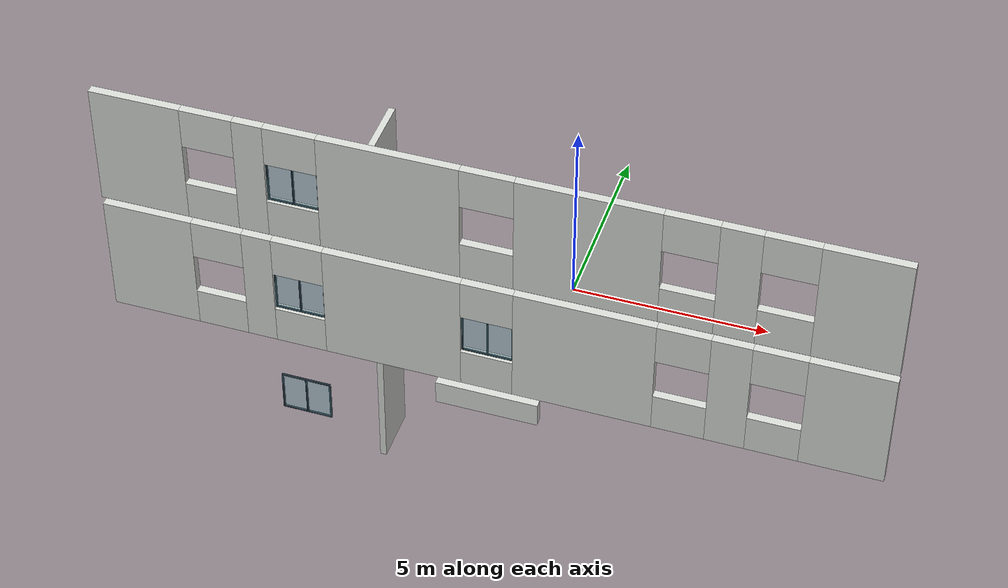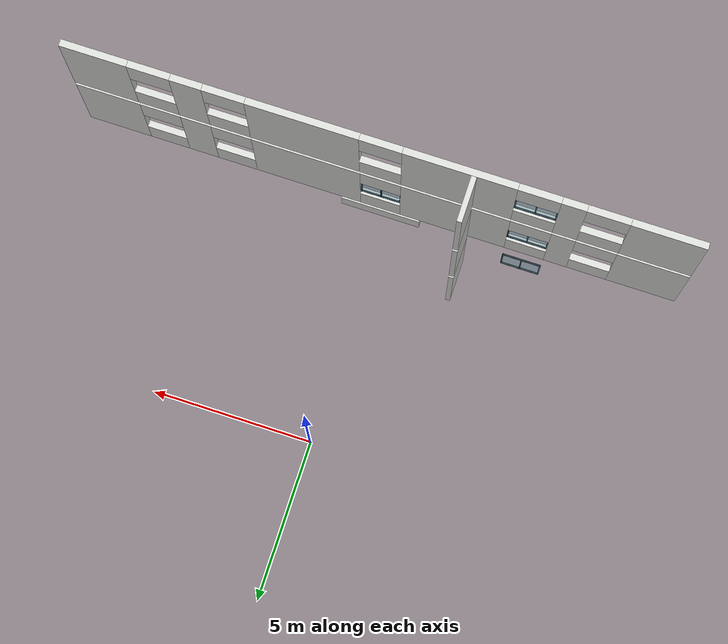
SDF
<sdf version="1.6">
 <world name="three_floor">
  <model name="f1_wall_014">
   <static>true</static>
   <pose>-2.6 -6.15 1.5 0 0 0</pose>
   <link name="f1_wall_014_link">
    <collision name="f1_wall_014_collision"><geometry><box><size>0.15 1.3 3</size></box></geometry></collision>
    <visual name="f1_wall_014_visual">
     <geometry><box><size>0.15 1.3 3</size></box></geometry>
     <material><ambient>.84 .85 .83 1</ambient><diffuse>.84 .85 .83 1</diffuse></material>
    </visual>
   </link>
  </model>
  <model name="f1_lintel_main_entry">
   <static>true</static>
   <pose>0 -6.9 2.7 0 0 0</pose>
   <link name="f1_lintel_main_entry_link">
    <collision name="f1_lintel_main_entry_collision">
     <geometry><box><size>2.4 0.2 0.6</size></box></geometry>
    </collision>
    <visual name="f1_lintel_main_entry_visual">
     <geometry><box><size>2.4 0.2 0.6</size></box></geometry>
     <material><ambient>.84 .85 .83 1</ambient><diffuse>.84 .85 .83 1</diffuse></material>
    </visual>
   </link>
  </model>
  <model name="f2_wall_009">
   <static>true</static>
   <pose>0 -6.9 4.7 0 0 0</pose>
   <link name="f2_wall_009_link">
    <collision name="f2_wall_009_link_panel_0_collision">
     <pose>-7.95 0 0 0 0 0</pose>
     <geometry><box><size>2.1 0.2 3</size></box></geometry>
    </collision>
    <visual name="f2_wall_009_link_panel_0_visual">
     <pose>-7.95 0 0 0 0 0</pose>
     <geometry><box><size>2.1 0.2 3</size></box></geometry>
     <material><ambient>.84 .85 .83 1</ambient><diffuse>.84 .85 .83 1</diffuse></material>
    </visual>
    <collision name="f2_wall_009_link_sill_0_collision">
     <pose>-6.3 0 -1.025 0 0 0</pose>
     <geometry><box><size>1.2 0.2 0.95</size></box></geometry>
    </collision>
    <visual name="f2_wall_009_link_sill_0_visual">
     <pose>-6.3 0 -1.025 0 0 0</pose>
     <geometry><box><size>1.2 0.2 0.95</size></box></geometry>
     <material><ambient>.84 .85 .83 1</ambient><diffuse>.84 .85 .83 1</diffuse></material>
    </visual>
    <collision name="f2_wall_009_link_header_0_collision">
     <pose>-6.3 0 1 0 0 0</pose>
     <geometry><box><size>1.2 0.2 1</size></box></geometry>
    </collision>
    <visual name="f2_wall_009_link_header_0_visual">
     <pose>-6.3 0 1 0 0 0</pose>
     <geometry><box><size>1.2 0.2 1</size></box></geometry>
     <material><ambient>.84 .85 .83 1</ambient><diffuse>.84 .85 .83 1</diffuse></material>
    </visual>
    <collision name="f2_wall_009_link_panel_1_collision">
     <pose>-5.35 0 0 0 0 0</pose>
     <geometry><box><size>0.7 0.2 3</size></box></geometry>
    </collision>
    <visual name="f2_wall_009_link_panel_1_visual">
     <pose>-5.35 0 0 0 0 0</pose>
     <geometry><box><size>0.7 0.2 3</size></box></geometry>
     <material><ambient>.84 .85 .83 1</ambient><diffuse>.84 .85 .83 1</diffuse></material>
    </visual>
    <collision name="f2_wall_009_link_sill_1_collision">
     <pose>-4.4 0 -1.025 0 0 0</pose>
     <geometry><box><size>1.2 0.2 0.95</size></box></geometry>
    </collision>
    <visual name="f2_wall_009_link_sill_1_visual">
     <pose>-4.4 0 -1.025 0 0 0</pose>
     <geometry><box><size>1.2 0.2 0.95</size></box></geometry>
     <material><ambient>.84 .85 .83 1</ambient><diffuse>.84 .85 .83 1</diffuse></material>
    </visual>
    <collision name="f2_wall_009_link_header_1_collision">
     <pose>-4.4 0 1 0 0 0</pose>
     <geometry><box><size>1.2 0.2 1</size></box></geometry>
    </collision>
    <visual name="f2_wall_009_link_header_1_visual">
     <pose>-4.4 0 1 0 0 0</pose>
     <geometry><box><size>1.2 0.2 1</size></box></geometry>
     <material><ambient>.84 .85 .83 1</ambient><diffuse>.84 .85 .83 1</diffuse></material>
    </visual>
    <collision name="f2_wall_009_link_panel_2_collision">
     <pose>-2.2 0 0 0 0 0</pose>
     <geometry><box><size>3.2 0.2 3</size></box></geometry>
    </collision>
    <visual name="f2_wall_009_link_panel_2_visual">
     <pose>-2.2 0 0 0 0 0</pose>
     <geometry><box><size>3.2 0.2 3</size></box></geometry>
     <material><ambient>.84 .85 .83 1</ambient><diffuse>.84 .85 .83 1</diffuse></material>
    </visual>
    <collision name="f2_wall_009_link_sill_2_collision">
     <pose>0 0 -1.025 0 0 0</pose>
     <geometry><box><size>1.2 0.2 0.95</size></box></geometry>
    </collision>
    <visual name="f2_wall_009_link_sill_2_visual">
     <pose>0 0 -1.025 0 0 0</pose>
     <geometry><box><size>1.2 0.2 0.95</size></box></geometry>
     <material><ambient>.84 .85 .83 1</ambient><diffuse>.84 .85 .83 1</diffuse></material>
    </visual>
    <collision name="f2_wall_009_link_header_2_collision">
     <pose>0 0 1 0 0 0</pose>
     <geometry><box><size>1.2 0.2 1</size></box></geometry>
    </collision>
    <visual name="f2_wall_009_link_header_2_visual">
     <pose>0 0 1 0 0 0</pose>
     <geometry><box><size>1.2 0.2 1</size></box></geometry>
     <material><ambient>.84 .85 .83 1</ambient><diffuse>.84 .85 .83 1</diffuse></material>
    </visual>
    <collision name="f2_wall_009_link_panel_3_collision">
     <pose>2.2 0 0 0 0 0</pose>
     <geometry><box><size>3.2 0.2 3</size></box></geometry>
    </collision>
    <visual name="f2_wall_009_link_panel_3_visual">
     <pose>2.2 0 0 0 0 0</pose>
     <geometry><box><size>3.2 0.2 3</size></box></geometry>
     <material><ambient>.84 .85 .83 1</ambient><diffuse>.84 .85 .83 1</diffuse></material>
    </visual>
    <collision name="f2_wall_009_link_sill_3_collision">
     <pose>4.4 0 -1.025 0 0 0</pose>
     <geometry><box><size>1.2 0.2 0.95</size></box></geometry>
    </collision>
    <visual name="f2_wall_009_link_sill_3_visual">
     <pose>4.4 0 -1.025 0 0 0</pose>
     <geometry><box><size>1.2 0.2 0.95</size></box></geometry>
     <material><ambient>.84 .85 .83 1</ambient><diffuse>.84 .85 .83 1</diffuse></material>
    </visual>
    <collision name="f2_wall_009_link_header_3_collision">
     <pose>4.4 0 1 0 0 0</pose>
     <geometry><box><size>1.2 0.2 1</size></box></geometry>
    </collision>
    <visual name="f2_wall_009_link_header_3_visual">
     <pose>4.4 0 1 0 0 0</pose>
     <geometry><box><size>1.2 0.2 1</size></box></geometry>
     <material><ambient>.84 .85 .83 1</ambient><diffuse>.84 .85 .83 1</diffuse></material>
    </visual>
    <collision name="f2_wall_009_link_panel_4_collision">
     <pose>5.45 0 0 0 0 0</pose>
     <geometry><box><size>0.9 0.2 3</size></box></geometry>
    </collision>
    <visual name="f2_wall_009_link_panel_4_visual">
     <pose>5.45 0 0 0 0 0</pose>
     <geometry><box><size>0.9 0.2 3</size></box></geometry>
     <material><ambient>.84 .85 .83 1</ambient><diffuse>.84 .85 .83 1</diffuse></material>
    </visual>
    <collision name="f2_wall_009_link_sill_4_collision">
     <pose>6.5 0 -1.025 0 0 0</pose>
     <geometry><box><size>1.2 0.2 0.95</size></box></geometry>
    </collision>
    <visual name="f2_wall_009_link_sill_4_visual">
     <pose>6.5 0 -1.025 0 0 0</pose>
     <geometry><box><size>1.2 0.2 0.95</size></box></geometry>
     <material><ambient>.84 .85 .83 1</ambient><diffuse>.84 .85 .83 1</diffuse></material>
    </visual>
    <collision name="f2_wall_009_link_header_4_collision">
     <pose>6.5 0 1 0 0 0</pose>
     <geometry><box><size>1.2 0.2 1</size></box></geometry>
    </collision>
    <visual name="f2_wall_009_link_header_4_visual">
     <pose>6.5 0 1 0 0 0</pose>
     <geometry><box><size>1.2 0.2 1</size></box></geometry>
     <material><ambient>.84 .85 .83 1</ambient><diffuse>.84 .85 .83 1</diffuse></material>
    </visual>
    <collision name="f2_wall_009_link_last_panel_collision">
     <pose>8.05 0 0 0 0 0</pose>
     <geometry><box><size>1.9 0.2 3</size></box></geometry>
    </collision>
    <visual name="f2_wall_009_link_last_panel_visual">
     <pose>8.05 0 0 0 0 0</pose>
     <geometry><box><size>1.9 0.2 3</size></box></geometry>
     <material><ambient>.84 .85 .83 1</ambient><diffuse>.84 .85 .83 1</diffuse></material>
    </visual>
   </link>
  </model>
  <model name="f2_wall_014">
   <static>true</static>
   <pose>-2.6 -6.15 4.7 0 0 0</pose>
   <link name="f2_wall_014_link">
    <collision name="f2_wall_014_collision"><geometry><box><size>0.15 1.3 3</size></box></geometry></collision>
    <visual name="f2_wall_014_visual">
     <geometry><box><size>0.15 1.3 3</size></box></geometry>
     <material><ambient>.84 .85 .83 1</ambient><diffuse>.84 .85 .83 1</diffuse></material>
    </visual>
   </link>
  </model>
  <model name="f3_wall_013">
   <static>true</static>
   <pose>0 -6.9 7.9 0 0 0</pose>
   <link name="f3_wall_013_link">
    <collision name="f3_wall_013_link_panel_0_collision">
     <pose>-7.95 0 0 0 0 0</pose>
     <geometry><box><size>2.1 0.2 3</size></box></geometry>
    </collision>
    <visual name="f3_wall_013_link_panel_0_visual">
     <pose>-7.95 0 0 0 0 0</pose>
     <geometry><box><size>2.1 0.2 3</size></box></geometry>
     <material><ambient>.84 .85 .83 1</ambient><diffuse>.84 .85 .83 1</diffuse></material>
    </visual>
    <collision name="f3_wall_013_link_sill_0_collision">
     <pose>-6.3 0 -1.025 0 0 0</pose>
     <geometry><box><size>1.2 0.2 0.95</size></box></geometry>
    </collision>
    <visual name="f3_wall_013_link_sill_0_visual">
     <pose>-6.3 0 -1.025 0 0 0</pose>
     <geometry><box><size>1.2 0.2 0.95</size></box></geometry>
     <material><ambient>.84 .85 .83 1</ambient><diffuse>.84 .85 .83 1</diffuse></material>
    </visual>
    <collision name="f3_wall_013_link_header_0_collision">
     <pose>-6.3 0 1 0 0 0</pose>
     <geometry><box><size>1.2 0.2 1</size></box></geometry>
    </collision>
    <visual name="f3_wall_013_link_header_0_visual">
     <pose>-6.3 0 1 0 0 0</pose>
     <geometry><box><size>1.2 0.2 1</size></box></geometry>
     <material><ambient>.84 .85 .83 1</ambient><diffuse>.84 .85 .83 1</diffuse></material>
    </visual>
    <collision name="f3_wall_013_link_panel_1_collision">
     <pose>-5.35 0 0 0 0 0</pose>
     <geometry><box><size>0.7 0.2 3</size></box></geometry>
    </collision>
    <visual name="f3_wall_013_link_panel_1_visual">
     <pose>-5.35 0 0 0 0 0</pose>
     <geometry><box><size>0.7 0.2 3</size></box></geometry>
     <material><ambient>.84 .85 .83 1</ambient><diffuse>.84 .85 .83 1</diffuse></material>
    </visual>
    <collision name="f3_wall_013_link_sill_1_collision">
     <pose>-4.4 0 -1.025 0 0 0</pose>
     <geometry><box><size>1.2 0.2 0.95</size></box></geometry>
    </collision>
    <visual name="f3_wall_013_link_sill_1_visual">
     <pose>-4.4 0 -1.025 0 0 0</pose>
     <geometry><box><size>1.2 0.2 0.95</size></box></geometry>
     <material><ambient>.84 .85 .83 1</ambient><diffuse>.84 .85 .83 1</diffuse></material>
    </visual>
    <collision name="f3_wall_013_link_header_1_collision">
     <pose>-4.4 0 1 0 0 0</pose>
     <geometry><box><size>1.2 0.2 1</size></box></geometry>
    </collision>
    <visual name="f3_wall_013_link_header_1_visual">
     <pose>-4.4 0 1 0 0 0</pose>
     <geometry><box><size>1.2 0.2 1</size></box></geometry>
     <material><ambient>.84 .85 .83 1</ambient><diffuse>.84 .85 .83 1</diffuse></material>
    </visual>
    <collision name="f3_wall_013_link_panel_2_collision">
     <pose>-2.2 0 0 0 0 0</pose>
     <geometry><box><size>3.2 0.2 3</size></box></geometry>
    </collision>
    <visual name="f3_wall_013_link_panel_2_visual">
     <pose>-2.2 0 0 0 0 0</pose>
     <geometry><box><size>3.2 0.2 3</size></box></geometry>
     <material><ambient>.84 .85 .83 1</ambient><diffuse>.84 .85 .83 1</diffuse></material>
    </visual>
    <collision name="f3_wall_013_link_sill_2_collision">
     <pose>0 0 -1.025 0 0 0</pose>
     <geometry><box><size>1.2 0.2 0.95</size></box></geometry>
    </collision>
    <visual name="f3_wall_013_link_sill_2_visual">
     <pose>0 0 -1.025 0 0 0</pose>
     <geometry><box><size>1.2 0.2 0.95</size></box></geometry>
     <material><ambient>.84 .85 .83 1</ambient><diffuse>.84 .85 .83 1</diffuse></material>
    </visual>
    <collision name="f3_wall_013_link_header_2_collision">
     <pose>0 0 1 0 0 0</pose>
     <geometry><box><size>1.2 0.2 1</size></box></geometry>
    </collision>
    <visual name="f3_wall_013_link_header_2_visual">
     <pose>0 0 1 0 0 0</pose>
     <geometry><box><size>1.2 0.2 1</size></box></geometry>
     <material><ambient>.84 .85 .83 1</ambient><diffuse>.84 .85 .83 1</diffuse></material>
    </visual>
    <collision name="f3_wall_013_link_panel_3_collision">
     <pose>2.2 0 0 0 0 0</pose>
     <geometry><box><size>3.2 0.2 3</size></box></geometry>
    </collision>
    <visual name="f3_wall_013_link_panel_3_visual">
     <pose>2.2 0 0 0 0 0</pose>
     <geometry><box><size>3.2 0.2 3</size></box></geometry>
     <material><ambient>.84 .85 .83 1</ambient><diffuse>.84 .85 .83 1</diffuse></material>
    </visual>
    <collision name="f3_wall_013_link_sill_3_collision">
     <pose>4.4 0 -1.025 0 0 0</pose>
     <geometry><box><size>1.2 0.2 0.95</size></box></geometry>
    </collision>
    <visual name="f3_wall_013_link_sill_3_visual">
     <pose>4.4 0 -1.025 0 0 0</pose>
     <geometry><box><size>1.2 0.2 0.95</size></box></geometry>
     <material><ambient>.84 .85 .83 1</ambient><diffuse>.84 .85 .83 1</diffuse></material>
    </visual>
    <collision name="f3_wall_013_link_header_3_collision">
     <pose>4.4 0 1 0 0 0</pose>
     <geometry><box><size>1.2 0.2 1</size></box></geometry>
    </collision>
    <visual name="f3_wall_013_link_header_3_visual">
     <pose>4.4 0 1 0 0 0</pose>
     <geometry><box><size>1.2 0.2 1</size></box></geometry>
     <material><ambient>.84 .85 .83 1</ambient><diffuse>.84 .85 .83 1</diffuse></material>
    </visual>
    <collision name="f3_wall_013_link_panel_4_collision">
     <pose>5.45 0 0 0 0 0</pose>
     <geometry><box><size>0.9 0.2 3</size></box></geometry>
    </collision>
    <visual name="f3_wall_013_link_panel_4_visual">
     <pose>5.45 0 0 0 0 0</pose>
     <geometry><box><size>0.9 0.2 3</size></box></geometry>
     <material><ambient>.84 .85 .83 1</ambient><diffuse>.84 .85 .83 1</diffuse></material>
    </visual>
    <collision name="f3_wall_013_link_sill_4_collision">
     <pose>6.5 0 -1.025 0 0 0</pose>
     <geometry><box><size>1.2 0.2 0.95</size></box></geometry>
    </collision>
    <visual name="f3_wall_013_link_sill_4_visual">
     <pose>6.5 0 -1.025 0 0 0</pose>
     <geometry><box><size>1.2 0.2 0.95</size></box></geometry>
     <material><ambient>.84 .85 .83 1</ambient><diffuse>.84 .85 .83 1</diffuse></material>
    </visual>
    <collision name="f3_wall_013_link_header_4_collision">
     <pose>6.5 0 1 0 0 0</pose>
     <geometry><box><size>1.2 0.2 1</size></box></geometry>
    </collision>
    <visual name="f3_wall_013_link_header_4_visual">
     <pose>6.5 0 1 0 0 0</pose>
     <geometry><box><size>1.2 0.2 1</size></box></geometry>
     <material><ambient>.84 .85 .83 1</ambient><diffuse>.84 .85 .83 1</diffuse></material>
    </visual>
    <collision name="f3_wall_013_link_last_panel_collision">
     <pose>8.05 0 0 0 0 0</pose>
     <geometry><box><size>1.9 0.2 3</size></box></geometry>
    </collision>
    <visual name="f3_wall_013_link_last_panel_visual">
     <pose>8.05 0 0 0 0 0</pose>
     <geometry><box><size>1.9 0.2 3</size></box></geometry>
     <material><ambient>.84 .85 .83 1</ambient><diffuse>.84 .85 .83 1</diffuse></material>
    </visual>
   </link>
  </model>
  <model name="f3_wall_014">
   <static>true</static>
   <pose>-2.6 -6.15 7.9 0 0 0</pose>
   <link name="f3_wall_014_link">
    <collision name="f3_wall_014_collision"><geometry><box><size>0.15 1.3 3</size></box></geometry></collision>
    <visual name="f3_wall_014_visual">
     <geometry><box><size>0.15 1.3 3</size></box></geometry>
     <material><ambient>.84 .85 .83 1</ambient><diffuse>.84 .85 .83 1</diffuse></material>
    </visual>
   </link>
  </model>
  <model name="f1_s2_window_09">
   <static>true</static>
   <pose>-4.4 -6.9 1.475 0 0 0</pose>
   <link name="f1_s2_window_09_link">
    <collision name="f1_s2_window_09_link_glass_collision">
     <geometry><box><size>1.2 0.045 1.05</size></box></geometry>
    </collision>
    <visual name="f1_s2_window_09_link_glass_visual">
     <geometry><box><size>1.2 0.045 1.05</size></box></geometry>
     <material><ambient>0.44 0.76 0.83 1</ambient><diffuse>0.44 0.76 0.83 1</diffuse></material>
     <transparency>0.65</transparency>
    </visual>
    <collision name="f1_s2_window_09_link_mullion_-0.58_collision">
     <pose>-0.58 0 0 0 0 0</pose>
     <geometry><box><size>0.035 0.045 1.05</size></box></geometry>
    </collision>
    <visual name="f1_s2_window_09_link_mullion_-0.58_visual">
     <pose>-0.58 0 0 0 0 0</pose>
     <geometry><box><size>0.035 0.045 1.05</size></box></geometry>
     <material><ambient>0.15 0.2 0.24 1</ambient><diffuse>0.15 0.2 0.24 1</diffuse></material>
    </visual>
    <collision name="f1_s2_window_09_link_mullion_0.58_collision">
     <pose>0.58 0 0 0 0 0</pose>
     <geometry><box><size>0.035 0.045 1.05</size></box></geometry>
    </collision>
    <visual name="f1_s2_window_09_link_mullion_0.58_visual">
     <pose>0.58 0 0 0 0 0</pose>
     <geometry><box><size>0.035 0.045 1.05</size></box></geometry>
     <material><ambient>0.15 0.2 0.24 1</ambient><diffuse>0.15 0.2 0.24 1</diffuse></material>
    </visual>
    <collision name="f1_s2_window_09_link_mullion_0_collision">
     <geometry><box><size>0.035 0.045 1.05</size></box></geometry>
    </collision>
    <visual name="f1_s2_window_09_link_mullion_0_visual">
     <geometry><box><size>0.035 0.045 1.05</size></box></geometry>
     <material><ambient>0.15 0.2 0.24 1</ambient><diffuse>0.15 0.2 0.24 1</diffuse></material>
    </visual>
    <collision name="f1_s2_window_09_link_frame_-0.51_collision">
     <pose>0 0 -0.51 0 0 0</pose>
     <geometry><box><size>1.2 0.045 0.03</size></box></geometry>
    </collision>
    <visual name="f1_s2_window_09_link_frame_-0.51_visual">
     <pose>0 0 -0.51 0 0 0</pose>
     <geometry><box><size>1.2 0.045 0.03</size></box></geometry>
     <material><ambient>0.15 0.2 0.24 1</ambient><diffuse>0.15 0.2 0.24 1</diffuse></material>
    </visual>
    <collision name="f1_s2_window_09_link_frame_0.51_collision">
     <pose>0 0 0.51 0 0 0</pose>
     <geometry><box><size>1.2 0.045 0.03</size></box></geometry>
    </collision>
    <visual name="f1_s2_window_09_link_frame_0.51_visual">
     <pose>0 0 0.51 0 0 0</pose>
     <geometry><box><size>1.2 0.045 0.03</size></box></geometry>
     <material><ambient>0.15 0.2 0.24 1</ambient><diffuse>0.15 0.2 0.24 1</diffuse></material>
    </visual>
   </link>
  </model>
  <model name="f2_s2_window_20">
   <static>true</static>
   <pose>-4.4 -6.9 4.675 0 0 0</pose>
   <link name="f2_s2_window_20_link">
    <collision name="f2_s2_window_20_link_glass_collision">
     <geometry><box><size>1.2 0.045 1.05</size></box></geometry>
    </collision>
    <visual name="f2_s2_window_20_link_glass_visual">
     <geometry><box><size>1.2 0.045 1.05</size></box></geometry>
     <material><ambient>0.44 0.76 0.83 1</ambient><diffuse>0.44 0.76 0.83 1</diffuse></material>
     <transparency>0.65</transparency>
    </visual>
    <collision name="f2_s2_window_20_link_mullion_-0.58_collision">
     <pose>-0.58 0 0 0 0 0</pose>
     <geometry><box><size>0.035 0.045 1.05</size></box></geometry>
    </collision>
    <visual name="f2_s2_window_20_link_mullion_-0.58_visual">
     <pose>-0.58 0 0 0 0 0</pose>
     <geometry><box><size>0.035 0.045 1.05</size></box></geometry>
     <material><ambient>0.15 0.2 0.24 1</ambient><diffuse>0.15 0.2 0.24 1</diffuse></material>
    </visual>
    <collision name="f2_s2_window_20_link_mullion_0.58_collision">
     <pose>0.58 0 0 0 0 0</pose>
     <geometry><box><size>0.035 0.045 1.05</size></box></geometry>
    </collision>
    <visual name="f2_s2_window_20_link_mullion_0.58_visual">
     <pose>0.58 0 0 0 0 0</pose>
     <geometry><box><size>0.035 0.045 1.05</size></box></geometry>
     <material><ambient>0.15 0.2 0.24 1</ambient><diffuse>0.15 0.2 0.24 1</diffuse></material>
    </visual>
    <collision name="f2_s2_window_20_link_mullion_0_collision">
     <geometry><box><size>0.035 0.045 1.05</size></box></geometry>
    </collision>
    <visual name="f2_s2_window_20_link_mullion_0_visual">
     <geometry><box><size>0.035 0.045 1.05</size></box></geometry>
     <material><ambient>0.15 0.2 0.24 1</ambient><diffuse>0.15 0.2 0.24 1</diffuse></material>
    </visual>
    <collision name="f2_s2_window_20_link_frame_-0.51_collision">
     <pose>0 0 -0.51 0 0 0</pose>
     <geometry><box><size>1.2 0.045 0.03</size></box></geometry>
    </collision>
    <visual name="f2_s2_window_20_link_frame_-0.51_visual">
     <pose>0 0 -0.51 0 0 0</pose>
     <geometry><box><size>1.2 0.045 0.03</size></box></geometry>
     <material><ambient>0.15 0.2 0.24 1</ambient><diffuse>0.15 0.2 0.24 1</diffuse></material>
    </visual>
    <collision name="f2_s2_window_20_link_frame_0.51_collision">
     <pose>0 0 0.51 0 0 0</pose>
     <geometry><box><size>1.2 0.045 0.03</size></box></geometry>
    </collision>
    <visual name="f2_s2_window_20_link_frame_0.51_visual">
     <pose>0 0 0.51 0 0 0</pose>
     <geometry><box><size>1.2 0.045 0.03</size></box></geometry>
     <material><ambient>0.15 0.2 0.24 1</ambient><diffuse>0.15 0.2 0.24 1</diffuse></material>
    </visual>
   </link>
  </model>
  <model name="f2_s2_window_21">
   <static>true</static>
   <pose>0 -6.9 4.675 0 0 0</pose>
   <link name="f2_s2_window_21_link">
    <collision name="f2_s2_window_21_link_glass_collision">
     <geometry><box><size>1.2 0.045 1.05</size></box></geometry>
    </collision>
    <visual name="f2_s2_window_21_link_glass_visual">
     <geometry><box><size>1.2 0.045 1.05</size></box></geometry>
     <material><ambient>0.44 0.76 0.83 1</ambient><diffuse>0.44 0.76 0.83 1</diffuse></material>
     <transparency>0.65</transparency>
    </visual>
    <collision name="f2_s2_window_21_link_mullion_-0.58_collision">
     <pose>-0.58 0 0 0 0 0</pose>
     <geometry><box><size>0.035 0.045 1.05</size></box></geometry>
    </collision>
    <visual name="f2_s2_window_21_link_mullion_-0.58_visual">
     <pose>-0.58 0 0 0 0 0</pose>
     <geometry><box><size>0.035 0.045 1.05</size></box></geometry>
     <material><ambient>0.15 0.2 0.24 1</ambient><diffuse>0.15 0.2 0.24 1</diffuse></material>
    </visual>
    <collision name="f2_s2_window_21_link_mullion_0.58_collision">
     <pose>0.58 0 0 0 0 0</pose>
     <geometry><box><size>0.035 0.045 1.05</size></box></geometry>
    </collision>
    <visual name="f2_s2_window_21_link_mullion_0.58_visual">
     <pose>0.58 0 0 0 0 0</pose>
     <geometry><box><size>0.035 0.045 1.05</size></box></geometry>
     <material><ambient>0.15 0.2 0.24 1</ambient><diffuse>0.15 0.2 0.24 1</diffuse></material>
    </visual>
    <collision name="f2_s2_window_21_link_mullion_0_collision">
     <geometry><box><size>0.035 0.045 1.05</size></box></geometry>
    </collision>
    <visual name="f2_s2_window_21_link_mullion_0_visual">
     <geometry><box><size>0.035 0.045 1.05</size></box></geometry>
     <material><ambient>0.15 0.2 0.24 1</ambient><diffuse>0.15 0.2 0.24 1</diffuse></material>
    </visual>
    <collision name="f2_s2_window_21_link_frame_-0.51_collision">
     <pose>0 0 -0.51 0 0 0</pose>
     <geometry><box><size>1.2 0.045 0.03</size></box></geometry>
    </collision>
    <visual name="f2_s2_window_21_link_frame_-0.51_visual">
     <pose>0 0 -0.51 0 0 0</pose>
     <geometry><box><size>1.2 0.045 0.03</size></box></geometry>
     <material><ambient>0.15 0.2 0.24 1</ambient><diffuse>0.15 0.2 0.24 1</diffuse></material>
    </visual>
    <collision name="f2_s2_window_21_link_frame_0.51_collision">
     <pose>0 0 0.51 0 0 0</pose>
     <geometry><box><size>1.2 0.045 0.03</size></box></geometry>
    </collision>
    <visual name="f2_s2_window_21_link_frame_0.51_visual">
     <pose>0 0 0.51 0 0 0</pose>
     <geometry><box><size>1.2 0.045 0.03</size></box></geometry>
     <material><ambient>0.15 0.2 0.24 1</ambient><diffuse>0.15 0.2 0.24 1</diffuse></material>
    </visual>
   </link>
  </model>
  <model name="f3_s2_window_32">
   <static>true</static>
   <pose>-4.4 -6.9 7.875 0 0 0</pose>
   <link name="f3_s2_window_32_link">
    <collision name="f3_s2_window_32_link_glass_collision">
     <geometry><box><size>1.2 0.045 1.05</size></box></geometry>
    </collision>
    <visual name="f3_s2_window_32_link_glass_visual">
     <geometry><box><size>1.2 0.045 1.05</size></box></geometry>
     <material><ambient>0.44 0.76 0.83 1</ambient><diffuse>0.44 0.76 0.83 1</diffuse></material>
     <transparency>0.65</transparency>
    </visual>
    <collision name="f3_s2_window_32_link_mullion_-0.58_collision">
     <pose>-0.58 0 0 0 0 0</pose>
     <geometry><box><size>0.035 0.045 1.05</size></box></geometry>
    </collision>
    <visual name="f3_s2_window_32_link_mullion_-0.58_visual">
     <pose>-0.58 0 0 0 0 0</pose>
     <geometry><box><size>0.035 0.045 1.05</size></box></geometry>
     <material><ambient>0.15 0.2 0.24 1</ambient><diffuse>0.15 0.2 0.24 1</diffuse></material>
    </visual>
    <collision name="f3_s2_window_32_link_mullion_0.58_collision">
     <pose>0.58 0 0 0 0 0</pose>
     <geometry><box><size>0.035 0.045 1.05</size></box></geometry>
    </collision>
    <visual name="f3_s2_window_32_link_mullion_0.58_visual">
     <pose>0.58 0 0 0 0 0</pose>
     <geometry><box><size>0.035 0.045 1.05</size></box></geometry>
     <material><ambient>0.15 0.2 0.24 1</ambient><diffuse>0.15 0.2 0.24 1</diffuse></material>
    </visual>
    <collision name="f3_s2_window_32_link_mullion_0_collision">
     <geometry><box><size>0.035 0.045 1.05</size></box></geometry>
    </collision>
    <visual name="f3_s2_window_32_link_mullion_0_visual">
     <geometry><box><size>0.035 0.045 1.05</size></box></geometry>
     <material><ambient>0.15 0.2 0.24 1</ambient><diffuse>0.15 0.2 0.24 1</diffuse></material>
    </visual>
    <collision name="f3_s2_window_32_link_frame_-0.51_collision">
     <pose>0 0 -0.51 0 0 0</pose>
     <geometry><box><size>1.2 0.045 0.03</size></box></geometry>
    </collision>
    <visual name="f3_s2_window_32_link_frame_-0.51_visual">
     <pose>0 0 -0.51 0 0 0</pose>
     <geometry><box><size>1.2 0.045 0.03</size></box></geometry>
     <material><ambient>0.15 0.2 0.24 1</ambient><diffuse>0.15 0.2 0.24 1</diffuse></material>
    </visual>
    <collision name="f3_s2_window_32_link_frame_0.51_collision">
     <pose>0 0 0.51 0 0 0</pose>
     <geometry><box><size>1.2 0.045 0.03</size></box></geometry>
    </collision>
    <visual name="f3_s2_window_32_link_frame_0.51_visual">
     <pose>0 0 0.51 0 0 0</pose>
     <geometry><box><size>1.2 0.045 0.03</size></box></geometry>
     <material><ambient>0.15 0.2 0.24 1</ambient><diffuse>0.15 0.2 0.24 1</diffuse></material>
    </visual>
   </link>
  </model>
 </world>
</sdf>
